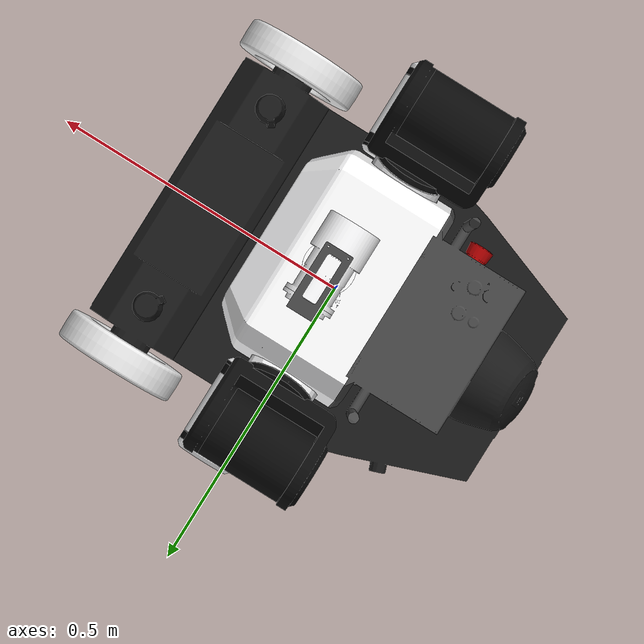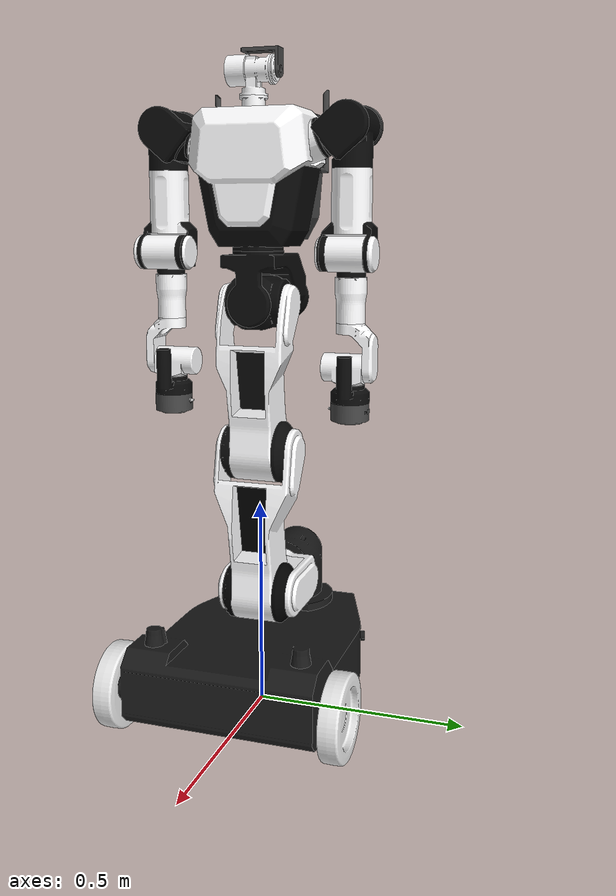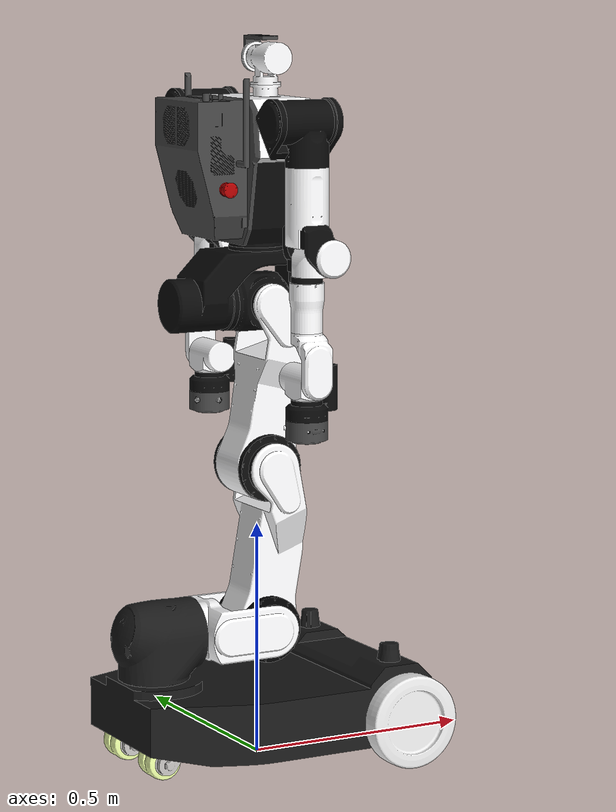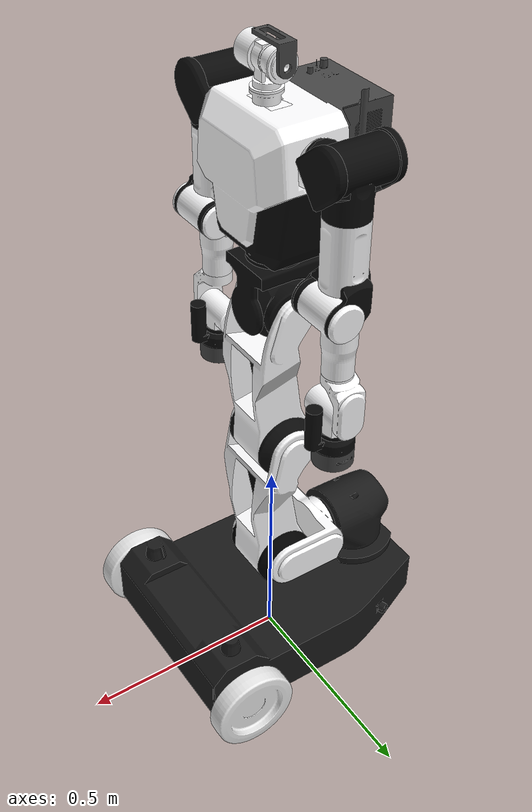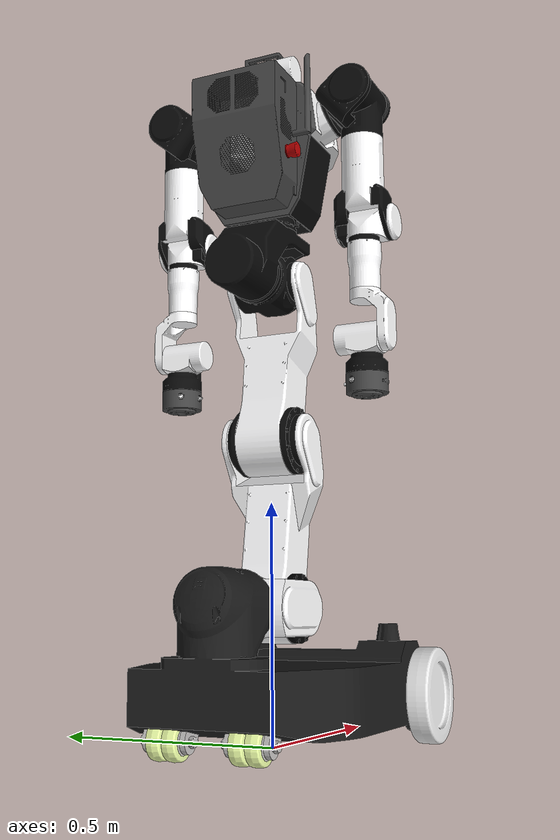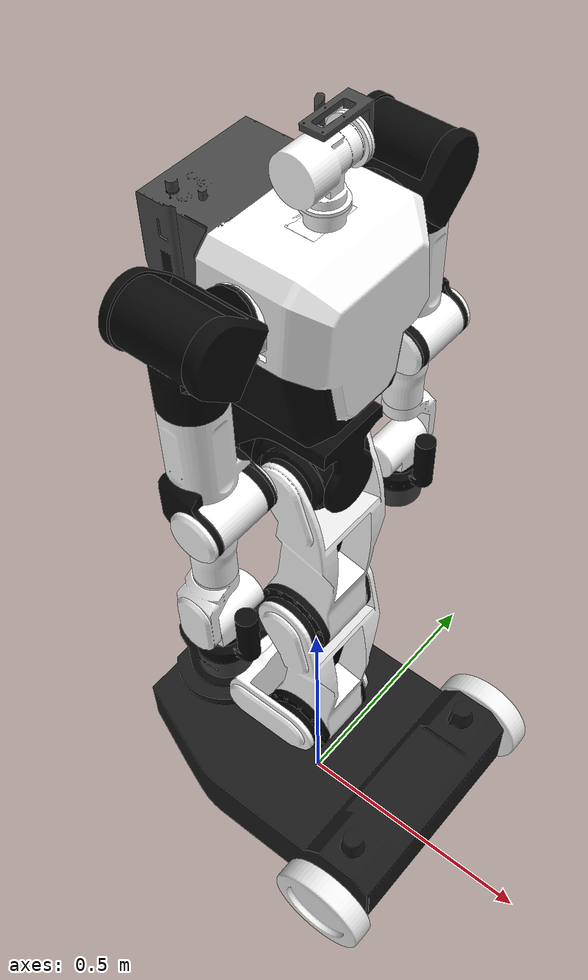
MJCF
<mujoco model="rby1">
  <compiler angle="radian" autolimits="true" eulerseq="xyz" meshdir="assets"/>
  <default>
    <joint armature="0.01" damping="5" range="-3.14 3.14"/>
    <material specular="0.5" shininess="0.25"/>

    <motor ctrllimited="true" ctrlrange="-100 100"/>
    <velocity ctrllimited="true"/>
    <position ctrllimited="true" kp="4000" kv="400"/>

    <default class="visual">
      <geom group="2" type="mesh" contype="0" conaffinity="0"/>
    </default>
    <default class="collision">
      <geom group="3" type="mesh"/>
    </default>
    <default class="in-model-collision">
      <geom group="2" contype="1" conaffinity="1" rgba="0.3 0 0 0.0"/>
    </default>
  </default>
  <asset>
    <!-- material -->
    <material name="0,0,0" specular="1.0" shininess="1.0" rgba="0.000000 0.000000 0.000000 1.000000"/>
    <material name="10,10,10_LINK_6" specular="1.0" shininess="0.2" rgba="0.039216 0.039216 0.039216 1.000000"/>
    <material name="10,10,10" specular="0.039216" shininess="1.0" rgba="0.039216 0.039216 0.039216 1.000000"/>
    <material name="163,163,175" specular="1.0" shininess="0.2" rgba="0.639216 0.639216 0.686275 1.000000"/>
    <material name="178,0,0" specular="1.0" shininess="0.2" rgba="0.698039 0.000000 0.000000 1.000000"/>
    <material name="190,188,186" specular="1.0" shininess="0.2" rgba="0.745098 0.737255 0.729412 1.000000"/>
    <material name="191,191,191" specular="0.0" shininess="0.3" rgba="0.749020 0.749020 0.749020 1.000000"/>
    <material name="192,192,192" specular="1.0" shininess="0.2" rgba="0.752941 0.752941 0.752941 1.000000"/>
    <material name="216,214,214" specular="1.0" shininess="0.2" rgba="0.847059 0.839216 0.839216 1.000000"/>
    <material name="237,255,168" specular="1.0" shininess="0.2" rgba="0.929412 1.000000 0.658824 1.000000"/>
    <material name="242,236,238" specular="1.0" shininess="0.2" rgba="0.949020 0.925490 0.933333 1.000000"/>
    <material name="244,244,244" specular="0.9568629999999999" shininess="1.0"
      rgba="0.956863 0.956863 0.956863 1.000000"/>
    <material name="25,25,25" specular="1.0" shininess="0.8" rgba="0.100000 0.100000 0.100000 1.000000"/>
    <material name="254,254,255_LINK_6" specular="1.0" shininess="0.2" rgba="0.996078 0.996078 1.000000 1.000000"/>
    <material name="254,254,255" specular="0.9973853333333333" shininess="1.0"
      rgba="0.996078 0.996078 1.000000 1.000000"/>
    <material name="65,55,50" specular="1.0" shininess="0.2" rgba="0.254902 0.215686 0.196078 1.000000"/>
    <material name="65,65,65" specular="0.254902" shininess="1.0" rgba="0.254902 0.254902 0.254902 1.000000"/>
    <material name="69,69,69_1" specular="0.0" shininess="1.0" rgba="0.270588 0.270588 0.270588 1.000000"/>
    <material name="69,69,69" specular="1.0" shininess="1.0" rgba="0.270588 0.270588 0.270588 1.000000"/>
    <material name="70,70,70_FINGER" specular="0.27451" shininess="1.0" rgba="0.274510 0.274510 0.274510 1.000000"/>
    <material name="70,70,70" specular="1.0" shininess="0.2" rgba="0.274510 0.274510 0.274510 1.000000"/>
    <material name="79,79,79" specular="1.0" shininess="0.2" rgba="0.309804 0.309804 0.309804 1.000000"/>
    <material name="80,80,80" specular="0.0" shininess="0.5" rgba="0.313725 0.313725 0.313725 1.000000"/>
    <material name="235,235,235" specular="1.0" shininess="0.2" rgba="0.921569 0.921569 0.921569 1.000000"/>
    <!-- mesh -->
    <mesh name="a_base_0" file="a_base_0.obj"/>
    <mesh name="a_base_1" file="a_base_1.obj"/>
    <mesh name="a_base_2" file="a_base_2.obj"/>
    <mesh name="a_base_3" file="a_base_3.obj"/>
    <mesh name="EE_BODY" file="EE_BODY.obj"/>
    <mesh name="EE_FINGER_0" file="EE_FINGER_0.obj"/>
    <mesh name="EE_FINGER_1" file="EE_FINGER_1.obj"/>
    <mesh name="LINK_1" file="LINK_1.obj"/>
    <mesh name="LINK_2_0" file="LINK_2_0.obj"/>
    <mesh name="LINK_2_1" file="LINK_2_1.obj"/>
    <mesh name="LINK_3_0" file="LINK_3_0.obj"/>
    <mesh name="LINK_3_1" file="LINK_3_1.obj"/>
    <mesh name="LINK_4" file="LINK_4.obj"/>
    <mesh name="LINK_5" file="LINK_5.obj"/>
    <mesh name="LINK_6_0" file="LINK_6_0.obj"/>
    <mesh name="LINK_6_1" file="LINK_6_1.obj"/>
    <mesh name="LINK_6_2" file="LINK_6_2.obj"/>
    <mesh name="LINK_6_3" file="LINK_6_3.obj"/>
    <mesh name="LINK_6_4" file="LINK_6_4.obj"/>
    <mesh name="LINK_6_5" file="LINK_6_5.obj"/>
    <mesh name="LINK_7" file="LINK_7.obj"/>
    <mesh name="LINK_8" file="LINK_8.obj"/>
    <mesh name="LINK_9_0" file="LINK_9_0.obj"/>
    <mesh name="LINK_9_1" file="LINK_9_1.obj"/>
    <mesh name="LINK_10_0" file="LINK_10_0.obj"/>
    <mesh name="LINK_10_1" file="LINK_10_1.obj"/>
    <mesh name="LINK_11" file="LINK_11.obj"/>
    <mesh name="LINK_12_0_V1.1" file="LINK_12_0_V1.1.obj"/>
    <mesh name="LINK_12_1_V1.1" file="LINK_12_1_V1.1.obj"/>
    <mesh name="LINK_13_0_V1.1" file="LINK_13_0_V1.1.obj"/>
    <mesh name="LINK_13_1_V1.1" file="LINK_13_1_V1.1.obj"/>
    <mesh name="LINK_14" file="LINK_14.obj"/>
    <mesh name="LINK_15" file="LINK_15.obj"/>
    <mesh name="LINK_16_0" file="LINK_16_0.obj"/>
    <mesh name="LINK_16_1" file="LINK_16_1.obj"/>
    <mesh name="LINK_17_0" file="LINK_17_0.obj"/>
    <mesh name="LINK_17_1" file="LINK_17_1.obj"/>
    <mesh name="LINK_18" file="LINK_18.obj"/>
    <mesh name="LINK_19_0_V1.1" file="LINK_19_0_V1.1.obj"/>
    <mesh name="LINK_19_1_V1.1" file="LINK_19_1_V1.1.obj"/>
    <mesh name="LINK_20_0_V1.1" file="LINK_20_0_V1.1.obj"/>
    <mesh name="LINK_20_1_V1.1" file="LINK_20_1_V1.1.obj"/>
    <mesh name="NECK_0" file="NECK_0.obj"/>
    <mesh name="NECK_1" file="NECK_1.obj"/>
    <mesh name="NECK_2_0" file="NECK_2_0.obj"/>
    <mesh name="NECK_2_1" file="NECK_2_1.obj"/>
    <mesh name="WHEEL" file="WHEEL.obj"/>
  </asset>
  <worldbody>
    <body name="base">
      <inertial pos="-0.0615794 -0.00142271 0.135139" quat="0.00383057 0.733861 -0.00742942 0.679248" mass="60.0804"
        diaginertia="3.77525 2.99424 1.36264"/>
      <joint name="world_j" type="free" limited="false" actuatorfrclimited="false"/>
      <geom mesh="a_base_0" material="191,191,191" class="visual"/>
      <geom mesh="a_base_1" material="237,255,168" class="visual"/>
      <geom mesh="a_base_2" material="190,188,186" class="visual"/>
      <geom mesh="a_base_3" material="25,25,25" class="visual"/>
      <geom mesh="a_base_0" class="collision"/>
      <geom mesh="a_base_1" class="collision"/>
      <geom mesh="a_base_2" class="collision"/>
      <geom mesh="a_base_3" class="collision"/>
      <body name="wheel_r" pos="0.228 -0.265 0.1">
        <inertial pos="0 -0.00073938 0" quat="0.707107 0 0 0.707107" mass="1.37784"
          diaginertia="0.00811815 0.00426657 0.00426657"/>
        <joint name="right_wheel" pos="0 0 0" axis="0 1 0" limited="false"/>
        <geom material="235,235,235" mesh="WHEEL" class="visual"/>
        <geom mesh="WHEEL" class="collision"/>
      </body>
      <body name="wheel_l" pos="0.228 0.265 0.1">
        <inertial pos="0 0.00073938 0" quat="0.707107 0 0 0.707107" mass="1.37784"
          diaginertia="0.00811815 0.00426657 0.00426657"/>
        <joint name="left_wheel" pos="0 0 0" axis="0 1 0" limited="false"/>
        <geom material="235,235,235" mesh="WHEEL" class="visual"/>
        <geom mesh="WHEEL" class="collision"/>
      </body>
      <body name="link_torso_0" pos="0 0 0.2805">
        <inertial pos="-0.0884841 0.00021367 4.6e-07" quat="0.443798 0.550483 -0.443815 0.55049" mass="2.24282"
          diaginertia="0.0189253 0.0143368 0.00985172"/>
        <joint name="torso_0" pos="0 0 0" axis="1 0 0" limited="true" range="-0.349066 0.349066"/>
        <geom material="254,254,255" mesh="LINK_1" class="visual"/>
        <geom mesh="LINK_1" class="in-model-collision"/>
        <geom size="0.105 0.115" pos="-0.115 0 0" quat="0.707105 0 0.707108 0" class="in-model-collision"/>
        <body name="link_torso_1">
          <inertial pos="0.00728955 -0.0172852 0.0691138" quat="0.997768 -0.0453891 0.0382115 -0.0306483" mass="9.72163"
            diaginertia="0.149421 0.139376 0.0275059"/>
          <joint name="torso_1" pos="0 0 0" axis="0 1 0" limited="true" range="-1.0472 1.52173"/>
          <geom mesh="LINK_2_0" material="0,0,0" class="visual"/>
          <geom mesh="LINK_2_1" material="254,254,255" class="visual"/>
          <geom mesh="LINK_2_0" class="in-model-collision"/>
          <geom mesh="LINK_2_1" class="in-model-collision"/>
          <geom size="0.115 0.11" pos="0.01 0 0.24" class="in-model-collision"/>
          <body name="link_torso_2" pos="0 0 0.35">
            <inertial pos="0.00653835 -0.0176954 0.0563658" quat="0.99687 -0.052526 0.0433482 -0.0401474" mass="9.21692"
              diaginertia="0.12242 0.116748 0.0292915"/>
            <joint name="torso_2" pos="0 0 0" axis="0 1 0" limited="true" range="-2.47837 1.5708"/>
            <geom mesh="LINK_3_0" material="10,10,10" class="visual"/>
            <geom mesh="LINK_3_1" material="254,254,255" class="visual"/>
            <geom mesh="LINK_3_0" class="in-model-collision"/>
            <geom mesh="LINK_3_1" class="in-model-collision"/>
            <geom size="0.095 0.08" pos="0.025 0 0.23" class="in-model-collision"/>
            <body name="link_torso_3" pos="0 0 0.35">
              <inertial pos="-0.00574156 -0.0172598 5.61e-05" quat="0.0913806 0.682262 -0.18841 0.700478" mass="4.18679"
                diaginertia="0.00955618 0.00946572 0.00832635"/>
              <joint name="torso_3" pos="0 0 0" axis="0 1 0" limited="true" range="-0.785398 1.5708"/>
              <geom mesh="LINK_4" material="10,10,10" class="visual"/>
              <geom mesh="LINK_4" class="in-model-collision"/>
              <body name="link_torso_4">
                <inertial pos="-0.0909709 5.085e-05 0.0260195" quat="-0.0536434 0.4399 -0.0270045 0.896036"
                  mass="4.45566" diaginertia="0.0255574 0.0255082 0.00942882"/>
                <joint name="torso_4" pos="0 0 0" axis="1 0 0" limited="true" range="-0.523599 0.523599"/>
                <geom material="10,10,10" mesh="LINK_5" class="visual"/>
                <geom mesh="LINK_5" class="in-model-collision"/>
                <geom size="0.105 0.1" pos="-0.07 0 0.0385" quat="0.707105 0 0.707108 0" class="in-model-collision"/>
                <body name="link_torso_5" pos="0 0 0.309427">
                  <inertial pos="-0.0132199 0.000254676 -0.0318761" quat="0.998675 -0.00438307 -0.0510462 0.00477378"
                    mass="12.6659" diaginertia="0.21618 0.167212 0.132309"/>
                  <joint name="torso_5" pos="0 0 0" axis="0 0 1" limited="true" range="-1.5708 1.5708"/>
                  <geom mesh="LINK_6_0" material="254,254,255_LINK_6" class="visual"/>
                  <geom mesh="LINK_6_1" material="191,191,191" class="visual"/>
                  <geom mesh="LINK_6_2" material="70,70,70" class="visual"/>
                  <geom mesh="LINK_6_3" material="178,0,0" class="visual"/>
                  <geom mesh="LINK_6_4" material="10,10,10_LINK_6" class="visual"/>
                  <geom mesh="LINK_6_5" material="254,254,255_LINK_6" class="visual"/>
                  <geom mesh="LINK_6_0" class="in-model-collision"/>
                  <geom mesh="LINK_6_1" class="in-model-collision"/>
                  <geom mesh="LINK_6_2" class="in-model-collision"/>
                  <geom mesh="LINK_6_3" class="in-model-collision"/>
                  <geom mesh="LINK_6_4" class="in-model-collision"/>
                  <geom mesh="LINK_6_5" class="in-model-collision"/>
                  <geom size="0.155 0.0675" pos="0 0 0.0075" class="in-model-collision"/>
                  <body name="NECK_0" pos="0.022 0 0.120073">
                    <inertial pos="0 0 0" mass="0"/>
                    <geom mesh="NECK_0" material="254,254,255" class="visual"/>
                    <geom mesh="NECK_0" class="in-model-collision"/>
                  </body>
                  <body name="link_right_arm_0" pos="0 -0.22 0.0800735" quat="0.984808 -0.173648 0 0">
                    <inertial pos="-0.00316662 0.0343718 -3e-07" quat="0.536676 0.553304 0.439546 0.461122"
                      mass="1.26164" diaginertia="0.00433912 0.00432154 0.00223129"/>
                    <joint name="right_arm_0" pos="0 0 0" axis="0 1 0" limited="true" range="-2.35619 2.35619"/>
                    <geom material="10,10,10" mesh="LINK_7" class="visual"/>
                    <geom mesh="LINK_7" class="in-model-collision"/>
                    <geom size="0.075 0.035" pos="-0.015 0.018 -0.008" quat="0.707105 0 0.707108 0"
                      class="in-model-collision"/>
                    <body name="link_right_arm_1" quat="0.984808 0.173648 0 0">
                      <inertial pos="-0.00307855 -0.00124741 -0.0129432" quat="0.691024 -0.061096 -0.016345 0.72006"
                        mass="2.27287" diaginertia="0.00447747 0.0038967 0.00286448"/>
                      <joint name="right_arm_1" pos="0 0 0" axis="1 0 0" limited="true" range="-3.14159 0.05"/>
                      <geom material="10,10,10" mesh="LINK_8" class="visual"/>
                      <geom mesh="LINK_8" class="in-model-collision"/>
                      <geom size="0.05 0.1" pos="0 0 -0.1" class="in-model-collision"/>
                      <body name="link_right_arm_2">
                        <inertial pos="0.00115434 -0.00196635 -0.161925" quat="0.998316 -0.0390505 -0.0388849 0.0181103"
                          mass="2.46909" diaginertia="0.0098447 0.00928024 0.00322202"/>
                        <joint name="right_arm_2" pos="0 0 0" axis="0 0 1" limited="true" range="-2.0944 2.0944"/>
                        <geom mesh="LINK_9_0" material="254,254,255" class="visual"/>
                        <geom mesh="LINK_9_1" material="10,10,10" class="visual"/>
                        <geom mesh="LINK_9_0" class="in-model-collision"/>
                        <geom mesh="LINK_9_1" class="in-model-collision"/>
                        <geom size="0.05 0.04" pos="0.026 0 -0.276" quat="0.707105 0.707108 0 0"
                          class="in-model-collision"/>
                        <body name="link_right_arm_3" pos="0.031 0 -0.276">
                          <inertial pos="-0.0160313 -0.00692891 -0.0454981" quat="0.950945 0.0932571 0.100342 0.277377"
                            mass="2.26099" diaginertia="0.0086724 0.00849326 0.00187523"/>
                          <joint name="right_arm_3" pos="0 0 0" axis="0 1 0" limited="true" range="-2.61799 0.01"/>
                          <geom mesh="LINK_10_0" material="254,254,255" class="visual"/>
                          <geom mesh="LINK_10_1" material="10,10,10" class="visual"/>
                          <geom mesh="LINK_10_0" class="in-model-collision"/>
                          <geom mesh="LINK_10_1" class="in-model-collision"/>
                          <geom size="0.04 0.0575" pos="-0.031 0 -0.1075" class="in-model-collision"/>
                          <body name="link_right_arm_4" pos="-0.031 0 -0.256">
                            <inertial pos="-1.1e-07 -0.0269604 0.0618211" quat="0.686909 -0.167796 0.167796 0.686909"
                              mass="0.425087" diaginertia="0.000885625 0.00082466 0.000266295"/>
                            <joint name="right_arm_4" pos="0 0 0" axis="0 0 1" limited="true" range="-6.28319 6.28319"/>
                            <geom material="254,254,255" mesh="LINK_11" class="visual"/>
                            <geom mesh="LINK_11" class="in-model-collision"/>
                            <geom size="0.035 0.0475" pos="0 -0.038 0.0175" class="in-model-collision"/>
                            <body name="link_right_arm_5">
                              <inertial pos="0.00318034 -0.00532264 -0.0280966"
                                quat="0.559407 0.0608226 -0.0803636 0.822743" mass="1.59194"
                                diaginertia="0.00262685 0.00255036 0.00151658"/>
                              <joint name="right_arm_5" pos="0 0 0" axis="0 1 0" limited="true"
                                range="-1.74533 2.00713"/>
                              <geom mesh="LINK_12_0_V1.1" material="254,254,255" class="visual"/>
                              <geom mesh="LINK_12_1_V1.1" material="10,10,10" class="visual"/>
                              <geom mesh="LINK_12_0_V1.1" class="in-model-collision"/>
                              <geom mesh="LINK_12_1_V1.1" class="in-model-collision"/>
                              <geom size="0.075 0.026" pos="0 0 -0.024" class="in-model-collision"/>
                              <body name="link_right_arm_6">
                                <inertial pos="0.00024951 -0.00019562 -0.10711314" mass="0.42751673"
                                  fullinertia="0.00029613 0.00030651 0.00048946 -0.00000186 -0.00000157 0.00000221"/>
                                <joint name="right_arm_6" pos="0 0 0" axis="0 0 1" limited="true"
                                  range="-2.96706 2.96706"/>
                                <geom material="244,244,244" mesh="LINK_13_0_V1.1" class="visual"/>
                                <geom mesh="LINK_13_0_V1.1" class="in-model-collision"/>
                                <geom material="69,69,69" mesh="LINK_13_1_V1.1" class="visual"/>
                                <geom mesh="LINK_13_1_V1.1" class="in-model-collision"/>
                              </body>
                            </body>
                          </body>
                        </body>
                      </body>
                    </body>
                  </body>
                  <body name="link_left_arm_0" pos="0 0.22 0.0800735" quat="0.984808 0.173648 0 0">
                    <inertial pos="-0.00316662 -0.0343715 2.42e-06" quat="0.441442 0.459281 0.538276 0.551768"
                      mass="1.26164" diaginertia="0.0043391 0.00432158 0.00223133"/>
                    <joint name="left_arm_0" pos="0 0 0" axis="0 1 0" limited="true" range="-2.35619 2.35619"/>
                    <geom material="10,10,10" mesh="LINK_14" class="visual"/>
                    <geom mesh="LINK_14" class="in-model-collision"/>
                    <geom size="0.075 0.035" pos="-0.015 -0.018 -0.008" quat="0.707105 0 0.707108 0"
                      class="in-model-collision"/>
                    <body name="link_left_arm_1" quat="0.984808 -0.173648 0 0">
                      <inertial pos="-0.0018347 0.00040596 -0.0100873" quat="0.701113 -0.0246572 -0.049881 0.710875"
                        mass="1.88139" diaginertia="0.00355382 0.00296561 0.0022966"/>
                      <joint name="left_arm_1" pos="0 0 0" axis="1 0 0" limited="true" range="-0.05 3.14159"/>
                      <geom material="10,10,10" mesh="LINK_15" class="visual"/>
                      <geom mesh="LINK_15" class="in-model-collision"/>
                      <geom size="0.05 0.1" pos="0 0 -0.1" class="in-model-collision"/>
                      <body name="link_left_arm_2">
                        <inertial pos="0.00066086 -0.00038583 -0.15743"
                          quat="0.999413 -0.00635373 -0.0335732 -0.00246859" mass="2.35634"
                          diaginertia="0.00845197 0.00802394 0.00293109"/>
                        <joint name="left_arm_2" pos="0 0 0" axis="0 0 1" limited="true" range="-2.0944 2.0944"/>
                        <geom mesh="LINK_16_0" material="254,254,255" class="visual"/>
                        <geom mesh="LINK_16_1" material="10,10,10" class="visual"/>
                        <geom mesh="LINK_16_0" class="in-model-collision"/>
                        <geom mesh="LINK_16_1" class="in-model-collision"/>
                        <geom size="0.05 0.04" pos="0.026 0 -0.276" quat="0.707105 0.707108 0 0"
                          class="in-model-collision"/>
                        <body name="link_left_arm_3" pos="0.031 0 -0.276">
                          <inertial pos="-0.015653 0.00793126 -0.0499794" quat="0.977098 -0.0897025 0.113811 -0.15582"
                            mass="2.00906" diaginertia="0.00798526 0.00783637 0.00146823"/>
                          <joint name="left_arm_3" pos="0 0 0" axis="0 1 0" limited="true" range="-2.61799 0.01"/>
                          <geom mesh="LINK_17_0" material="254,254,255" class="visual"/>
                          <geom mesh="LINK_17_1" material="10,10,10" class="visual"/>
                          <geom mesh="LINK_17_0" class="in-model-collision"/>
                          <geom mesh="LINK_17_1" class="in-model-collision"/>
                          <geom size="0.04 0.0575" pos="-0.031 0 -0.1075" class="in-model-collision"/>
                          <body name="link_left_arm_4" pos="-0.031 0 -0.256">
                            <inertial pos="1.1e-07 0.0269604 0.0618211" quat="0.686909 0.167796 -0.167796 0.686909"
                              mass="0.425087" diaginertia="0.000885625 0.00082466 0.000266295"/>
                            <joint name="left_arm_4" pos="0 0 0" axis="0 0 1" limited="true" range="-6.28319 6.28319"/>
                            <geom material="254,254,255" mesh="LINK_18" class="visual"/>
                            <geom mesh="LINK_18" class="in-model-collision"/>
                            <geom size="0.035 0.0475" pos="0 0.038 0.0175" class="in-model-collision"/>
                            <body name="link_left_arm_5">
                              <inertial pos="0.00592398 -0.01167056 -0.02584035" mass="1.60424243"
                                fullinertia="0.00247523 0.00268221 0.00166703 -0.00004992 -0.00009867 0.00021464"/>
                              <joint name="left_arm_5" pos="0 0 0" axis="0 1 0" limited="true"
                                range="-1.74533 2.00713"/>
                              <geom mesh="LINK_19_0_V1.1" material="254,254,255" class="visual"/>
                              <geom mesh="LINK_19_1_V1.1" material="10,10,10" class="visual"/>
                              <geom mesh="LINK_19_0_V1.1" class="in-model-collision"/>
                              <geom mesh="LINK_19_1_V1.1" class="in-model-collision"/>
                              <geom size="0.075 0.026" pos="0 0 -0.024" class="in-model-collision"/>
                              <body name="link_left_arm_6">
                                <inertial pos="-0.00024951 0.00019562 -0.10711314" mass="0.42751673"
                                  fullinertia="0.00029613 0.00030651 0.00048946 -0.00000186 0.00000157 -0.00000221"/>
                                <joint name="left_arm_6" pos="0 0 0" axis="0 0 1" limited="true"
                                  range="-2.96706 2.96706"/>
                                <geom material="244,244,244" mesh="LINK_20_0_V1.1" class="visual"/>
                                <geom mesh="LINK_20_0_V1.1" class="in-model-collision"/>
                                <geom material="69,69,69" mesh="LINK_20_1_V1.1" class="visual"/>
                                <geom mesh="LINK_20_1_V1.1" class="in-model-collision"/>
                              </body>
                            </body>
                          </body>
                        </body>
                      </body>
                    </body>
                  </body>
                  <body name="link_head_1" pos="0.022 0 0.200073">
                    <inertial pos="-0.00041643 0.00593524 -0.00289916" quat="0.686943 0.726608 -0.0122145 -4.20643e-05"
                      mass="0.704765" diaginertia="0.000662227 0.000593368 0.000359954"/>
                    <joint name="head_0" pos="0 0 0" axis="0 0 1" limited="true" range="-1.57 1.57"/>
                    <geom mesh="NECK_1" material="254,254,255" class="visual"/>
                    <geom mesh="NECK_1" class="in-model-collision"/>
                    <body name="link_head_2">
                      <inertial pos="0.0531532 0.00547509 0.0591391" quat="0.221288 0.46561 -0.261859 0.815885"
                        mass="0.952627" diaginertia="0.00173533 0.00136285 0.000633984"/>
                      <joint name="head_1" pos="0 0 0" axis="0 1 0" limited="true" range="-1.57 1.57"/>
                      <geom mesh="NECK_2_0" material="254,254,255" class="visual"/>
                      <geom mesh="NECK_2_1" material="69,69,69" class="visual"/>
                      <geom mesh="NECK_2_0" class="in-model-collision"/>
                      <geom mesh="NECK_2_1" class="in-model-collision"/>
                    </body>
                  </body>
                </body>
              </body>
            </body>
          </body>
        </body>
      </body>
    </body>
  </worldbody>
  <actuator>
    <velocity name="left_wheel_act" joint="left_wheel" ctrlrange="-3.14 3.14"/>
    <velocity name="right_wheel_act" joint="right_wheel" ctrlrange="-3.14 3.14"/>
    <position name="link1_act" joint="torso_0" ctrlrange="-0.261799388 0.261799388" forcelimited="true"
      forcerange="-270 270"/>
    <position name="link2_act" joint="torso_1" ctrlrange="-0.523598776 1.570796327" forcelimited="true"
      forcerange="-270 270"/>
    <position name="link3_act" joint="torso_2" ctrlrange="-2.617993878 1.570796327" forcelimited="true"
      forcerange="-270 270"/>
    <position name="link4_act" joint="torso_3" ctrlrange="-0.785398163 1.570796327" forcelimited="true"
      forcerange="-270 270"/>
    <position name="link5_act" joint="torso_4" ctrlrange="-0.523598776 0.523598776" forcelimited="true"
      forcerange="-120 120"/>
    <position name="link6_act" joint="torso_5" ctrlrange="-2.35619449 2.35619449" forcelimited="true"
      forcerange="-120 120"/>
    <position name="right_arm_1_act" joint="right_arm_0" ctrlrange="-3.141592654 3.141592654" forcelimited="true"
      forcerange="-70 70"/>
    <position name="right_arm_2_act" joint="right_arm_1" ctrlrange="-3.141592654 0.017453293" forcelimited="true"
      forcerange="-70 70"/>
    <position name="right_arm_3_act" joint="right_arm_2" ctrlrange="-3.141592654 3.141592654" forcelimited="true"
      forcerange="-70 70"/>
    <position name="right_arm_4_act" joint="right_arm_3" ctrlrange="-2.617993878 0.017453293" forcelimited="true"
      forcerange="-40 40"/>
    <position name="right_arm_5_act" joint="right_arm_4" ctrlrange="-3.141592654 3.141592654" forcelimited="true"
      forcerange="-10 10"/>
    <position name="right_arm_6_act" joint="right_arm_5" ctrlrange="-1.570796327 1.919862177" forcelimited="true"
      forcerange="-10 10"/>
    <position name="right_arm_7_act" joint="right_arm_6" ctrlrange="-2.792526803 2.792526803" forcelimited="true"
      forcerange="-8 8"/>
    <position name="left_arm_1_act" joint="left_arm_0" ctrlrange="-3.141592654 3.141592654" forcelimited="true"
      forcerange="-70 70"/>
    <position name="left_arm_2_act" joint="left_arm_1" ctrlrange="-0.017453293 3.141592654" forcelimited="true"
      forcerange="-70 70"/>
    <position name="left_arm_3_act" joint="left_arm_2" ctrlrange="-3.141592654 3.141592654" forcelimited="true"
      forcerange="-70 70"/>
    <position name="left_arm_4_act" joint="left_arm_3" ctrlrange="-2.617993878 0.017453293" forcelimited="true"
      forcerange="-40 40"/>
    <position name="left_arm_5_act" joint="left_arm_4" ctrlrange="-3.141592654 3.141592654" forcelimited="true"
      forcerange="-10 10"/>
    <position name="left_arm_6_act" joint="left_arm_5" ctrlrange="-1.570796327 1.919862177" forcelimited="true"
      forcerange="-10 10"/>
    <position name="left_arm_7_act" joint="left_arm_6" ctrlrange="-2.792526803 2.792526803" forcelimited="true"
      forcerange="-8 8"/>
    <position name="head_0_act" joint="head_0" ctrlrange="-0.523 0.523" forcelimited="true" forcerange="-7.3 7.3"/>
    <position name="head_1_act" joint="head_1" ctrlrange="-0.35 1.57" forcelimited="true" forcerange="-7.3 7.3"/>
  </actuator>
  <contact>
    <exclude body1="base" body2="link_torso_1"/>
    <exclude body1="link_torso_2" body2="link_torso_4"/>
  </contact>
</mujoco>
